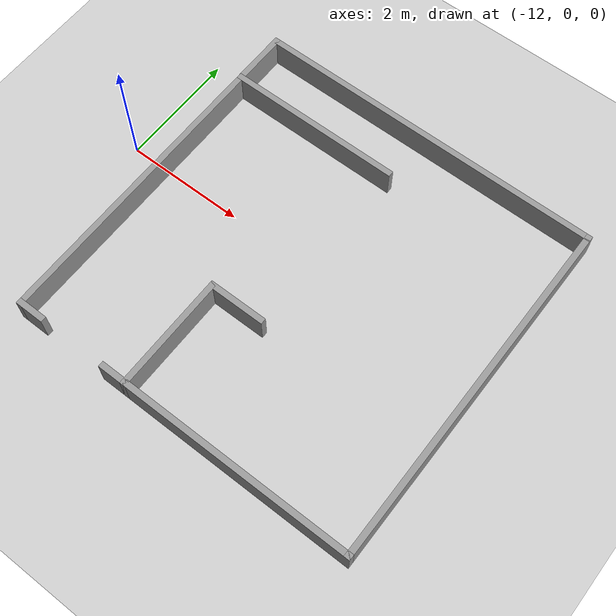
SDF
<sdf version="1.6">
 <world name="default">
  <model name="ground_plane">
   <static>1</static>
   <link name="link">
    <collision name="collision">
     <geometry><plane><normal>0 0 1</normal><size>80 80</size></plane></geometry>
     <surface>
      <contact><collide_bitmask>65535</collide_bitmask></contact>
      <friction><ode><mu>100</mu><mu2>50</mu2></ode></friction>
     </surface>
     <max_contacts>15</max_contacts>
    </collision>
    <visual name="visual">
     <cast_shadows>0</cast_shadows>
     <geometry><plane><normal>0 0 1</normal><size>80 80</size></plane></geometry>
     <material>
      <script><uri>file://media/materials/scripts/gazebo.material</uri><name>Gazebo/Grey</name></script>
     </material>
    </visual>
   </link>
  </model>
  <model name="shape5">
   <pose>-8.4 -0.200001 0 0 -0 0</pose>
   <link name="Wall_10">
    <collision name="Wall_10_Collision">
     <geometry><box><size>6 0.1 0.5</size></box></geometry>
     <pose>0 0 0.25 0 -0 0</pose>
    </collision>
    <visual name="Wall_10_Visual">
     <pose>0 0 0.25 0 -0 0</pose>
     <geometry><box><size>6 0.1 0.5</size></box></geometry>
     <material>
      <script><uri>file://media/materials/scripts/gazebo.material</uri><name>Gazebo/Grey</name></script>
      <ambient>1 1 1 1</ambient>
     </material>
     <meta><layer>0</layer></meta>
    </visual>
    <pose>-0 2.95 0 0 -0 0</pose>
   </link>
   <link name="Wall_11">
    <collision name="Wall_11_Collision">
     <geometry><box><size>6 0.1 0.5</size></box></geometry>
     <pose>0 0 0.25 0 -0 0</pose>
    </collision>
    <visual name="Wall_11_Visual">
     <pose>0 0 0.25 0 -0 0</pose>
     <geometry><box><size>6 0.1 0.5</size></box></geometry>
     <material>
      <script><uri>file://media/materials/scripts/gazebo.material</uri><name>Gazebo/Grey</name></script>
      <ambient>1 1 1 1</ambient>
     </material>
     <meta><layer>0</layer></meta>
    </visual>
    <pose>2.95 0 0 0 -0 -1.5708</pose>
   </link>
   <link name="Wall_12">
    <collision name="Wall_12_Collision">
     <geometry><box><size>4 0.1 0.5</size></box></geometry>
     <pose>0 0 0.25 0 -0 0</pose>
    </collision>
    <visual name="Wall_12_Visual">
     <pose>0 0 0.25 0 -0 0</pose>
     <geometry><box><size>4 0.1 0.5</size></box></geometry>
     <material>
      <script><uri>file://media/materials/scripts/gazebo.material</uri><name>Gazebo/Grey</name></script>
      <ambient>1 1 1 1</ambient>
     </material>
     <meta><layer>0</layer></meta>
    </visual>
    <pose>1 -2.95 0 0 -0 3.14159</pose>
   </link>
   <link name="Wall_13">
    <collision name="Wall_13_Collision">
     <geometry><box><size>2 0.1 0.5</size></box></geometry>
     <pose>0 0 0.25 0 -0 0</pose>
    </collision>
    <visual name="Wall_13_Visual">
     <pose>0 0 0.25 0 -0 0</pose>
     <geometry><box><size>2 0.1 0.5</size></box></geometry>
     <material>
      <script><uri>file://media/materials/scripts/gazebo.material</uri><name>Gazebo/Grey</name></script>
      <ambient>1 1 1 1</ambient>
     </material>
     <meta><layer>0</layer></meta>
    </visual>
    <pose>-0.95 -2 0 0 -0 1.5708</pose>
   </link>
   <link name="Wall_14">
    <collision name="Wall_14_Collision">
     <geometry><box><size>1.00029 0.1 0.5</size></box></geometry>
     <pose>0 0 0.25 0 -0 0</pose>
    </collision>
    <visual name="Wall_14_Visual">
     <pose>0 0 0.25 0 -0 0</pose>
     <geometry><box><size>1.00029 0.1 0.5</size></box></geometry>
     <material>
      <script><uri>file://media/materials/scripts/gazebo.material</uri><name>Gazebo/Grey</name></script>
      <ambient>1 1 1 1</ambient>
     </material>
     <meta><layer>0</layer></meta>
    </visual>
    <pose>-0.5 -1.05 0 0 -0 0</pose>
   </link>
   <link name="Wall_18">
    <collision name="Wall_18_Collision">
     <geometry><box><size>1 0.1 0.5</size></box></geometry>
     <pose>0 0 0.25 0 -0 0</pose>
    </collision>
    <visual name="Wall_18_Visual">
     <pose>0 0 0.25 0 -0 0</pose>
     <geometry><box><size>1 0.1 0.5</size></box></geometry>
     <material>
      <script><uri>file://media/materials/scripts/gazebo.material</uri><name>Gazebo/Grey</name></script>
      <ambient>1 1 1 1</ambient>
     </material>
     <meta><layer>0</layer></meta>
    </visual>
    <pose>-2.95 2.5 0 0 -0 -1.5708</pose>
   </link>
   <link name="Wall_19">
    <collision name="Wall_19_Collision">
     <geometry><box><size>3 0.1 0.5</size></box></geometry>
     <pose>0 0 0.25 0 -0 0</pose>
    </collision>
    <visual name="Wall_19_Visual">
     <pose>0 0 0.25 0 -0 0</pose>
     <geometry><box><size>3 0.1 0.5</size></box></geometry>
     <material>
      <script><uri>file://media/materials/scripts/gazebo.material</uri><name>Gazebo/Grey</name></script>
      <ambient>1 1 1 1</ambient>
     </material>
     <meta><layer>0</layer></meta>
    </visual>
    <pose>-1.5 2.05 0 0 -0 0</pose>
   </link>
   <link name="Wall_21">
    <collision name="Wall_21_Collision">
     <geometry><box><size>5.1 0.1 0.5</size></box></geometry>
     <pose>0 0 0.25 0 -0 0</pose>
    </collision>
    <visual name="Wall_21_Visual">
     <pose>0 0 0.25 0 -0 0</pose>
     <geometry><box><size>5.1 0.1 0.5</size></box></geometry>
     <material>
      <script><uri>file://media/materials/scripts/gazebo.material</uri><name>Gazebo/Grey</name></script>
      <ambient>1 1 1 1</ambient>
     </material>
     <meta><layer>0</layer></meta>
    </visual>
    <pose>-2.95 -0.45 0 0 -0 -1.5708</pose>
   </link>
   <link name="Wall_22">
    <collision name="Wall_22_Collision">
     <geometry><box><size>0.5 0.1 0.5</size></box></geometry>
     <pose>0 0 0.25 0 -0 0</pose>
    </collision>
    <visual name="Wall_22_Visual">
     <pose>0 0 0.25 0 -0 0</pose>
     <geometry><box><size>0.5 0.1 0.5</size></box></geometry>
     <material>
      <script><uri>file://media/materials/scripts/gazebo.material</uri><name>Gazebo/Grey</name></script>
      <ambient>1 1 1 1</ambient>
     </material>
     <meta><layer>0</layer></meta>
    </visual>
    <pose>-2.75 -2.95 0 0 -0 0</pose>
   </link>
   <link name="Wall_24">
    <collision name="Wall_24_Collision">
     <geometry><box><size>0.5 0.1 0.5</size></box></geometry>
     <pose>0 0 0.25 0 -0 0</pose>
    </collision>
    <visual name="Wall_24_Visual">
     <pose>0 0 0.25 0 -0 0</pose>
     <geometry><box><size>0.5 0.1 0.5</size></box></geometry>
     <material>
      <script><uri>file://media/materials/scripts/gazebo.material</uri><name>Gazebo/Grey</name></script>
      <ambient>1 1 1 1</ambient>
     </material>
     <meta><layer>0</layer></meta>
    </visual>
    <pose>-1.15 -2.95 0 0 -0 3.14159</pose>
   </link>
   <static>1</static>
  </model>
 </world>
</sdf>
